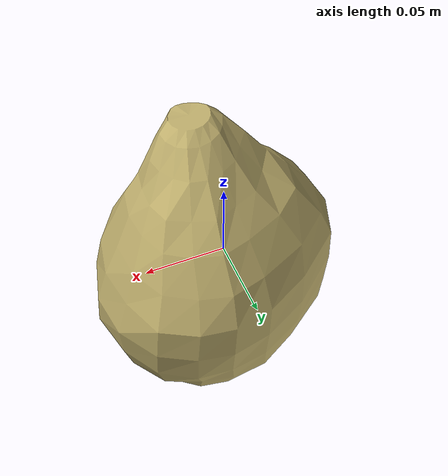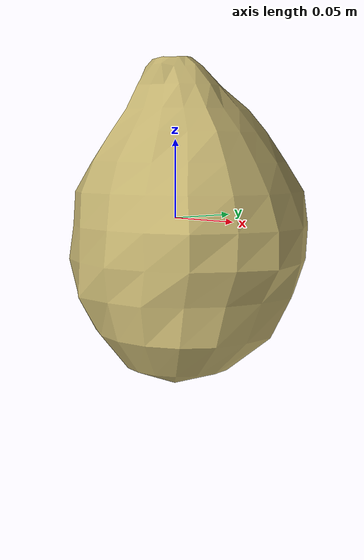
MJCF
<mujoco model="Lettuce_29">
  <compiler autolimits="true" boundmass="0.01" angle="radian"/>
  <default>
    <default class="/">
      <default class="__VISUAL_MJT__">
        <geom contype="0" conaffinity="0" group="0"/>
      </default>
      <default class="__STRUCTURAL_MJT__">
        <geom contype="8" conaffinity="15" group="4" friction="0.90000000000000002 0.90000000000000002 0.001" solref="0.025000000000000001 1" solimp="0.998 0.998 0.001"/>
      </default>
      <default class="__DYNAMIC_MJT__">
        <geom contype="1" conaffinity="15" group="4" friction="0.90000000000000002 0.90000000000000002 0.001" solref="0.025000000000000001 1" solimp="0.998 0.998 0.001"/>
      </default>
    </default>
  </default>
  <asset>
    <texture name="Lettuce3_Mat" type="2d" file="Lettuce3_AlbedoTransparency.png"/>
    <material name="material_Lettuce3_Mat" class="/" texture="Lettuce3_Mat" specular="0.5" shininess="0.5" rgba="1 0.95246359999999997 0.62735850000000004 1"/>
    <mesh name="Lettuce_29_lettuce_c9" class="/" file="Lettuce_29_lettuce_c9/Lettuce_29_lettuce_c9.obj" scale="1 1 1"/>
  </asset>
  <worldbody>
    <body name="Lettuce_29">
      <joint name="Lettuce_29_free" class="/" type="free" pos="0 0 0" axis="0 0 1" stiffness="0" range="0 0" armature="0" damping="0.10000000000000001" frictionloss="0"/>
      <body name="Lettuce_29_lettuce_c9" pos="0.0037000000000000002 -0.013010000000000001 -0.00216" quat="1 0 0 0">
        <geom name="Lettuce_29_lettuce_c9" class="__VISUAL_MJT__" type="mesh" material="material_Lettuce3_Mat" shellinertia="true" mesh="Lettuce_29_lettuce_c9"/>
        <geom name="Lettuce_29_PrimitiveCollider_0" class="__DYNAMIC_MJT__" type="capsule" size="0.072080805897712708 0.019393205642700195" rgba="0 1 0 1" pos="0.0036351797170937061 0.013007082045078278 -0.010063342750072479" quat="7.1713115510397903e-17 0.99995960327903977 -0.0089884264487982216 0"/>
        <geom name="Lettuce_29_PrimitiveCollider_1" class="__DYNAMIC_MJT__" type="capsule" size="0.027841432020068169 0.016829879954457283" rgba="0 1 0 1" pos="0.006738920696079731 0.00653848797082901 0.061722606420516968" quat="-0.12195359489928707 0.99192998046871828 -0.034414131460000309 -0.0042310866597986352"/>
      </body>
    </body>
  </worldbody>
</mujoco>
